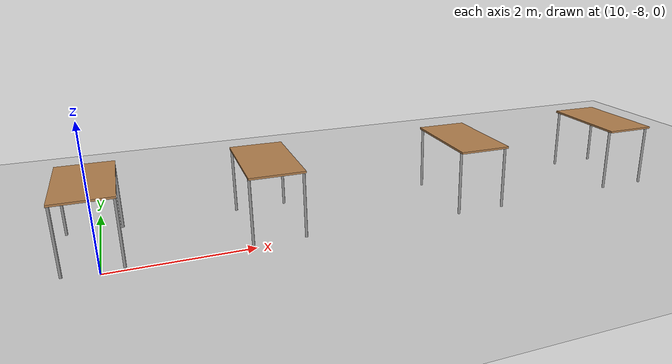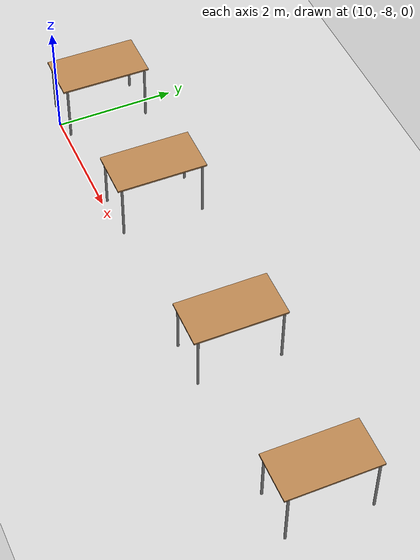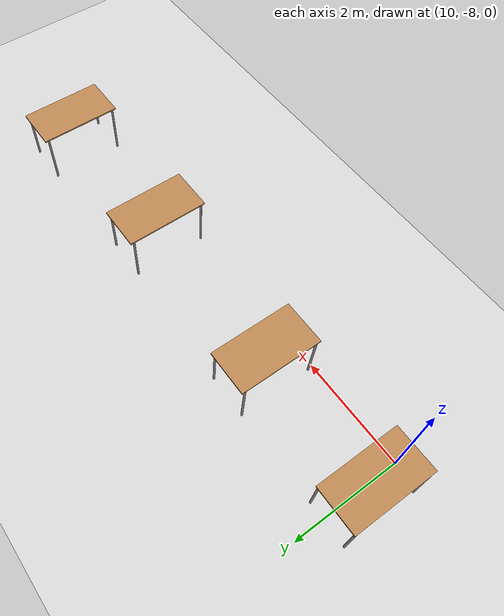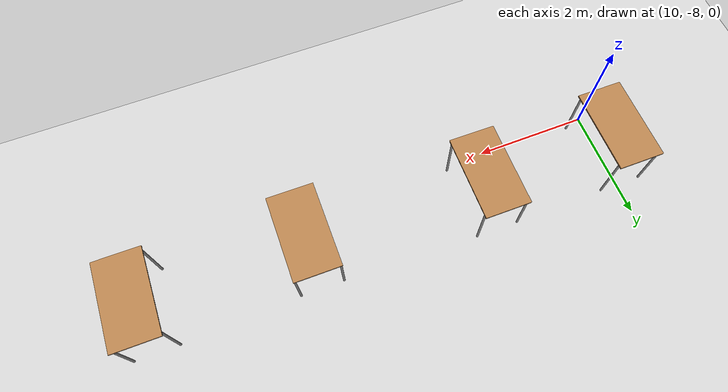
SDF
<sdf version="1.7">
 <world name="default">
  <model name="ground_plane">
   <static>1</static>
   <link name="link">
    <collision name="collision">
     <geometry><plane><normal>0 0 1</normal><size>100 100</size></plane></geometry>
     <surface>
      <contact><collide_bitmask>65535</collide_bitmask></contact>
      <friction><ode><mu>100</mu><mu2>50</mu2></ode></friction>
     </surface>
    </collision>
    <visual name="visual">
     <cast_shadows>0</cast_shadows>
     <geometry><plane><normal>0 0 1</normal><size>100 100</size></plane></geometry>
     <material>
      <script><uri>file://media/materials/scripts/gazebo.material</uri><name>Gazebo/Grey</name></script>
     </material>
    </visual>
   </link>
  </model>
  <model name="table">
   <static>1</static>
   <link name="link">
    <collision name="surface">
     <pose>0 0 1 0 -0 0</pose>
     <geometry><box><size>1.5 0.8 0.03</size></box></geometry>
     <surface><friction><ode><mu>0.6</mu><mu2>0.6</mu2></ode></friction></surface>
    </collision>
    <visual name="visual1">
     <pose>0 0 1 0 -0 0</pose>
     <geometry><box><size>1.5 0.8 0.03</size></box></geometry>
     <material>
      <script><uri>file://media/materials/scripts/gazebo.material</uri><name>Gazebo/Wood</name></script>
     </material>
    </visual>
    <collision name="front_left_leg">
     <pose>0.68 0.38 0.5 0 -0 0</pose>
     <geometry><cylinder><radius>0.02</radius><length>1</length></cylinder></geometry>
    </collision>
    <visual name="front_left_leg">
     <pose>0.68 0.38 0.5 0 -0 0</pose>
     <geometry><cylinder><radius>0.02</radius><length>1</length></cylinder></geometry>
     <material>
      <script><uri>file://media/materials/scripts/gazebo.material</uri><name>Gazebo/Grey</name></script>
     </material>
    </visual>
    <collision name="front_right_leg">
     <pose>0.68 -0.38 0.5 0 -0 0</pose>
     <geometry><cylinder><radius>0.02</radius><length>1</length></cylinder></geometry>
    </collision>
    <visual name="front_right_leg">
     <pose>0.68 -0.38 0.5 0 -0 0</pose>
     <geometry><cylinder><radius>0.02</radius><length>1</length></cylinder></geometry>
     <material>
      <script><uri>file://media/materials/scripts/gazebo.material</uri><name>Gazebo/Grey</name></script>
     </material>
    </visual>
    <collision name="back_right_leg">
     <pose>-0.68 -0.38 0.5 0 -0 0</pose>
     <geometry><cylinder><radius>0.02</radius><length>1</length></cylinder></geometry>
    </collision>
    <visual name="back_right_leg">
     <pose>-0.68 -0.38 0.5 0 -0 0</pose>
     <geometry><cylinder><radius>0.02</radius><length>1</length></cylinder></geometry>
     <material>
      <script><uri>file://media/materials/scripts/gazebo.material</uri><name>Gazebo/Grey</name></script>
     </material>
    </visual>
    <collision name="back_left_leg">
     <pose>-0.68 0.38 0.5 0 -0 0</pose>
     <geometry><cylinder><radius>0.02</radius><length>1</length></cylinder></geometry>
    </collision>
    <visual name="back_left_leg">
     <pose>-0.68 0.38 0.5 0 -0 0</pose>
     <geometry><cylinder><radius>0.02</radius><length>1</length></cylinder></geometry>
     <material>
      <script><uri>file://media/materials/scripts/gazebo.material</uri><name>Gazebo/Grey</name></script>
     </material>
    </visual>
   </link>
   <pose>9.92032 -7.23518 0 -2.1e-05 0.002967 1.56384</pose>
  </model>
  <model name="table_clone">
   <static>1</static>
   <link name="link">
    <collision name="surface">
     <pose>0 0 1 0 -0 0</pose>
     <geometry><box><size>1.5 0.8 0.03</size></box></geometry>
     <surface><friction><ode><mu>0.6</mu><mu2>0.6</mu2></ode></friction></surface>
    </collision>
    <visual name="visual1">
     <pose>0 0 1 0 -0 0</pose>
     <geometry><box><size>1.5 0.8 0.03</size></box></geometry>
     <material>
      <script><uri>file://media/materials/scripts/gazebo.material</uri><name>Gazebo/Wood</name></script>
     </material>
    </visual>
    <collision name="front_left_leg">
     <pose>0.68 0.38 0.5 0 -0 0</pose>
     <geometry><cylinder><radius>0.02</radius><length>1</length></cylinder></geometry>
    </collision>
    <visual name="front_left_leg">
     <pose>0.68 0.38 0.5 0 -0 0</pose>
     <geometry><cylinder><radius>0.02</radius><length>1</length></cylinder></geometry>
     <material>
      <script><uri>file://media/materials/scripts/gazebo.material</uri><name>Gazebo/Grey</name></script>
     </material>
    </visual>
    <collision name="front_right_leg">
     <pose>0.68 -0.38 0.5 0 -0 0</pose>
     <geometry><cylinder><radius>0.02</radius><length>1</length></cylinder></geometry>
    </collision>
    <visual name="front_right_leg">
     <pose>0.68 -0.38 0.5 0 -0 0</pose>
     <geometry><cylinder><radius>0.02</radius><length>1</length></cylinder></geometry>
     <material>
      <script><uri>file://media/materials/scripts/gazebo.material</uri><name>Gazebo/Grey</name></script>
     </material>
    </visual>
    <collision name="back_right_leg">
     <pose>-0.68 -0.38 0.5 0 -0 0</pose>
     <geometry><cylinder><radius>0.02</radius><length>1</length></cylinder></geometry>
    </collision>
    <visual name="back_right_leg">
     <pose>-0.68 -0.38 0.5 0 -0 0</pose>
     <geometry><cylinder><radius>0.02</radius><length>1</length></cylinder></geometry>
     <material>
      <script><uri>file://media/materials/scripts/gazebo.material</uri><name>Gazebo/Grey</name></script>
     </material>
    </visual>
    <collision name="back_left_leg">
     <pose>-0.68 0.38 0.5 0 -0 0</pose>
     <geometry><cylinder><radius>0.02</radius><length>1</length></cylinder></geometry>
    </collision>
    <visual name="back_left_leg">
     <pose>-0.68 0.38 0.5 0 -0 0</pose>
     <geometry><cylinder><radius>0.02</radius><length>1</length></cylinder></geometry>
     <material>
      <script><uri>file://media/materials/scripts/gazebo.material</uri><name>Gazebo/Grey</name></script>
     </material>
    </visual>
   </link>
   <pose>12.3537 -7.22814 0 -2.1e-05 0.002967 1.56384</pose>
  </model>
  <model name="table_clone_0">
   <static>1</static>
   <link name="link">
    <collision name="surface">
     <pose>0 0 1 0 -0 0</pose>
     <geometry><box><size>1.5 0.8 0.03</size></box></geometry>
     <surface><friction><ode><mu>0.6</mu><mu2>0.6</mu2></ode></friction></surface>
    </collision>
    <visual name="visual1">
     <pose>0 0 1 0 -0 0</pose>
     <geometry><box><size>1.5 0.8 0.03</size></box></geometry>
     <material>
      <script><uri>file://media/materials/scripts/gazebo.material</uri><name>Gazebo/Wood</name></script>
     </material>
    </visual>
    <collision name="front_left_leg">
     <pose>0.68 0.38 0.5 0 -0 0</pose>
     <geometry><cylinder><radius>0.02</radius><length>1</length></cylinder></geometry>
    </collision>
    <visual name="front_left_leg">
     <pose>0.68 0.38 0.5 0 -0 0</pose>
     <geometry><cylinder><radius>0.02</radius><length>1</length></cylinder></geometry>
     <material>
      <script><uri>file://media/materials/scripts/gazebo.material</uri><name>Gazebo/Grey</name></script>
     </material>
    </visual>
    <collision name="front_right_leg">
     <pose>0.68 -0.38 0.5 0 -0 0</pose>
     <geometry><cylinder><radius>0.02</radius><length>1</length></cylinder></geometry>
    </collision>
    <visual name="front_right_leg">
     <pose>0.68 -0.38 0.5 0 -0 0</pose>
     <geometry><cylinder><radius>0.02</radius><length>1</length></cylinder></geometry>
     <material>
      <script><uri>file://media/materials/scripts/gazebo.material</uri><name>Gazebo/Grey</name></script>
     </material>
    </visual>
    <collision name="back_right_leg">
     <pose>-0.68 -0.38 0.5 0 -0 0</pose>
     <geometry><cylinder><radius>0.02</radius><length>1</length></cylinder></geometry>
    </collision>
    <visual name="back_right_leg">
     <pose>-0.68 -0.38 0.5 0 -0 0</pose>
     <geometry><cylinder><radius>0.02</radius><length>1</length></cylinder></geometry>
     <material>
      <script><uri>file://media/materials/scripts/gazebo.material</uri><name>Gazebo/Grey</name></script>
     </material>
    </visual>
    <collision name="back_left_leg">
     <pose>-0.68 0.38 0.5 0 -0 0</pose>
     <geometry><cylinder><radius>0.02</radius><length>1</length></cylinder></geometry>
    </collision>
    <visual name="back_left_leg">
     <pose>-0.68 0.38 0.5 0 -0 0</pose>
     <geometry><cylinder><radius>0.02</radius><length>1</length></cylinder></geometry>
     <material>
      <script><uri>file://media/materials/scripts/gazebo.material</uri><name>Gazebo/Grey</name></script>
     </material>
    </visual>
   </link>
   <pose>15.5356 -7.31688 0 -2.1e-05 0.002967 1.56384</pose>
  </model>
  <model name="table_clone_1">
   <static>1</static>
   <link name="link">
    <collision name="surface">
     <pose>0 0 1 0 -0 0</pose>
     <geometry><box><size>1.5 0.8 0.03</size></box></geometry>
     <surface><friction><ode><mu>0.6</mu><mu2>0.6</mu2></ode></friction></surface>
    </collision>
    <visual name="visual1">
     <pose>0 0 1 0 -0 0</pose>
     <geometry><box><size>1.5 0.8 0.03</size></box></geometry>
     <material>
      <script><uri>file://media/materials/scripts/gazebo.material</uri><name>Gazebo/Wood</name></script>
     </material>
    </visual>
    <collision name="front_left_leg">
     <pose>0.68 0.38 0.5 0 -0 0</pose>
     <geometry><cylinder><radius>0.02</radius><length>1</length></cylinder></geometry>
    </collision>
    <visual name="front_left_leg">
     <pose>0.68 0.38 0.5 0 -0 0</pose>
     <geometry><cylinder><radius>0.02</radius><length>1</length></cylinder></geometry>
     <material>
      <script><uri>file://media/materials/scripts/gazebo.material</uri><name>Gazebo/Grey</name></script>
     </material>
    </visual>
    <collision name="front_right_leg">
     <pose>0.68 -0.38 0.5 0 -0 0</pose>
     <geometry><cylinder><radius>0.02</radius><length>1</length></cylinder></geometry>
    </collision>
    <visual name="front_right_leg">
     <pose>0.68 -0.38 0.5 0 -0 0</pose>
     <geometry><cylinder><radius>0.02</radius><length>1</length></cylinder></geometry>
     <material>
      <script><uri>file://media/materials/scripts/gazebo.material</uri><name>Gazebo/Grey</name></script>
     </material>
    </visual>
    <collision name="back_right_leg">
     <pose>-0.68 -0.38 0.5 0 -0 0</pose>
     <geometry><cylinder><radius>0.02</radius><length>1</length></cylinder></geometry>
    </collision>
    <visual name="back_right_leg">
     <pose>-0.68 -0.38 0.5 0 -0 0</pose>
     <geometry><cylinder><radius>0.02</radius><length>1</length></cylinder></geometry>
     <material>
      <script><uri>file://media/materials/scripts/gazebo.material</uri><name>Gazebo/Grey</name></script>
     </material>
    </visual>
    <collision name="back_left_leg">
     <pose>-0.68 0.38 0.5 0 -0 0</pose>
     <geometry><cylinder><radius>0.02</radius><length>1</length></cylinder></geometry>
    </collision>
    <visual name="back_left_leg">
     <pose>-0.68 0.38 0.5 0 -0 0</pose>
     <geometry><cylinder><radius>0.02</radius><length>1</length></cylinder></geometry>
     <material>
      <script><uri>file://media/materials/scripts/gazebo.material</uri><name>Gazebo/Grey</name></script>
     </material>
    </visual>
   </link>
   <pose>18.3691 -7.25305 0 -2.1e-05 0.002967 1.56384</pose>
  </model>
 </world>
</sdf>
